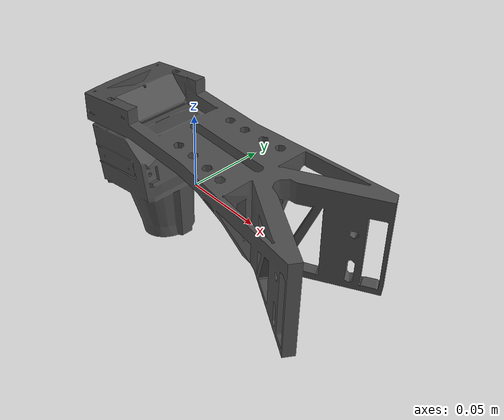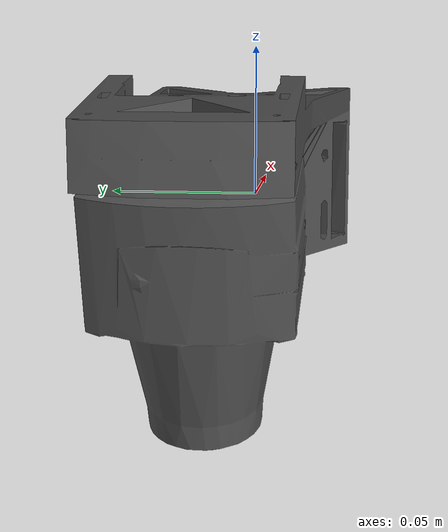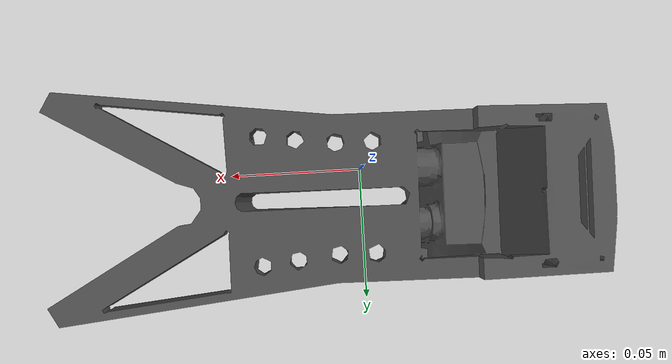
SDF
<?xml version="1.0" ?>
<sdf version="1.5">
  <model name="sick_backlaser">
    <link name="link">
      <gravity>false</gravity>
      <inertial>
        <mass>0.1</mass>
      </inertial>
      <visual name="visual">
        <geometry>
          <mesh>
            <uri>model://sick_backlaser/meshes/backlaser_mount.dae</uri>
          </mesh>
        </geometry>
        <cast_shadows>false</cast_shadows>
	<material>
     	  <ambient>.3 .3 .3 1</ambient>
    	  <diffuse>.3 .3 .3 1</diffuse>
    	  <specular>.1 .1 .1 1</specular>
    	  <emissive>0 0 0 0</emissive>
  	</material>
      </visual>
      <sensor name="backlaser" type="ray">
        <pose>-0.045 0.0125 -0.04 0 0.20944 3.1415</pose>
        <ray>
          <scan>
            <horizontal>
              <samples>240</samples>
              <resolution>1</resolution>
              <min_angle>-2.094</min_angle>
              <max_angle>2.094</max_angle>
            </horizontal>
          </scan>
          <range>
            <min>0.03</min>
            <max>10.0</max>
            <resolution>0.01</resolution>
          </range>
          <noise>
            <type>gaussian</type>
            <mean>0</mean>
            <stddev>0.005</stddev>
          </noise>
        </ray>
        <always_on>1</always_on>
        <update_rate>15</update_rate>
        <visualize>false</visualize>
        <plugin name="SickBackLaser" filename="libRayPlugin.so" />
      </sensor>
    </link>
  </model>
</sdf>
